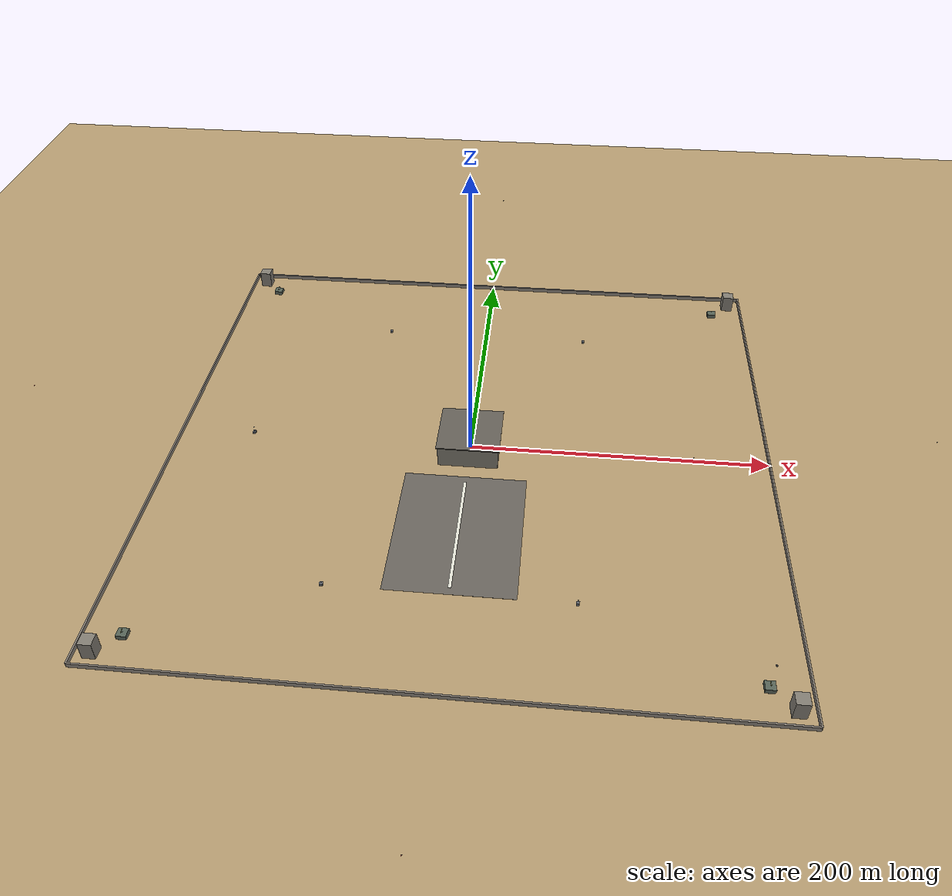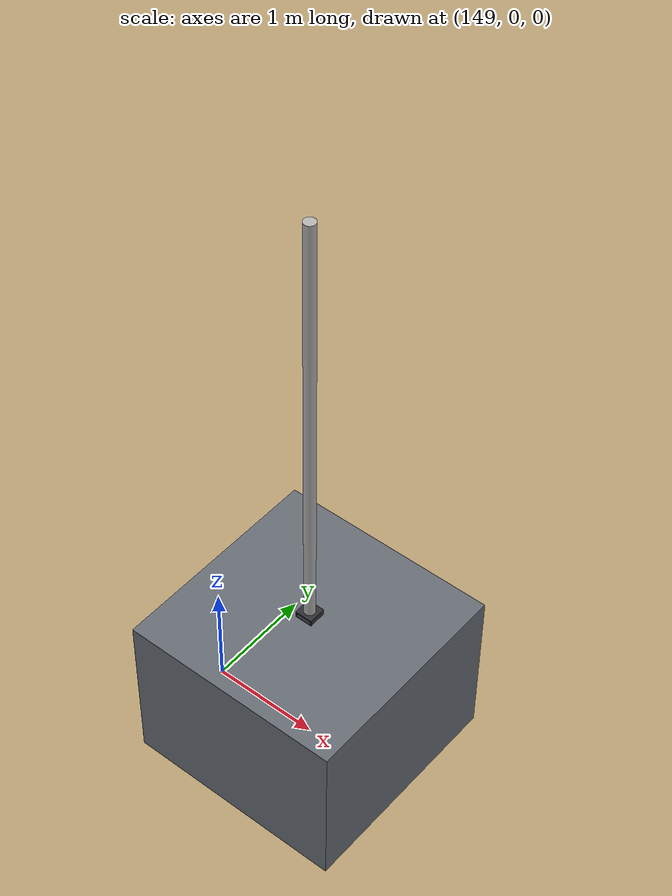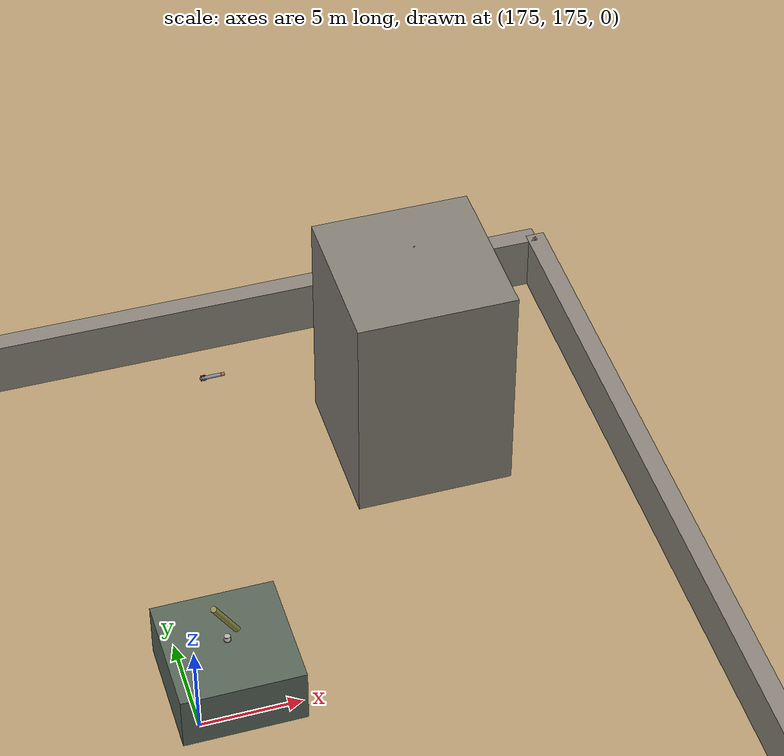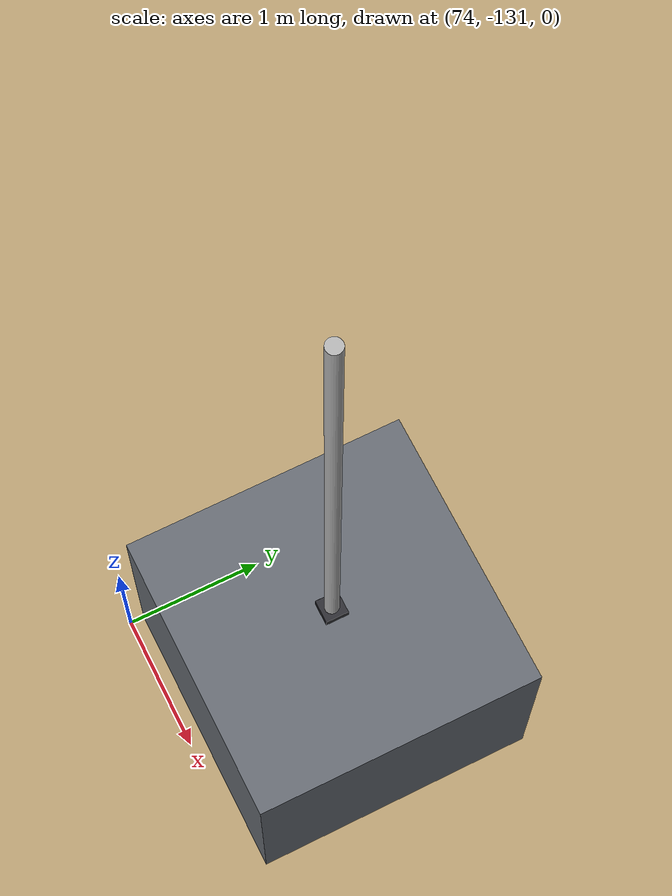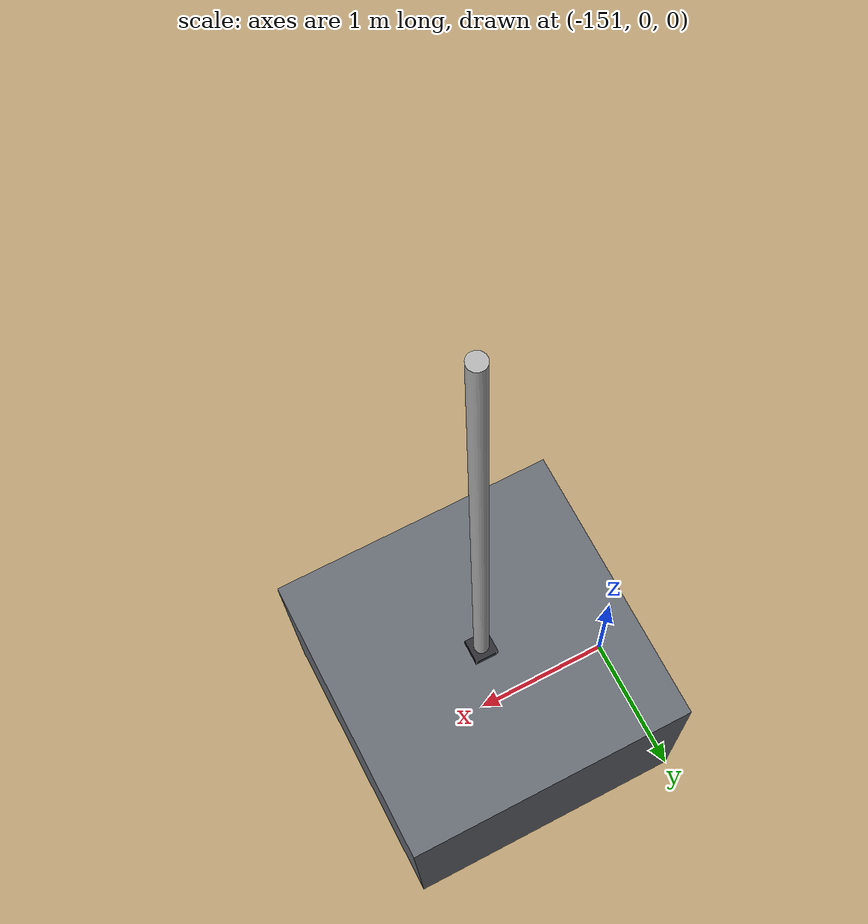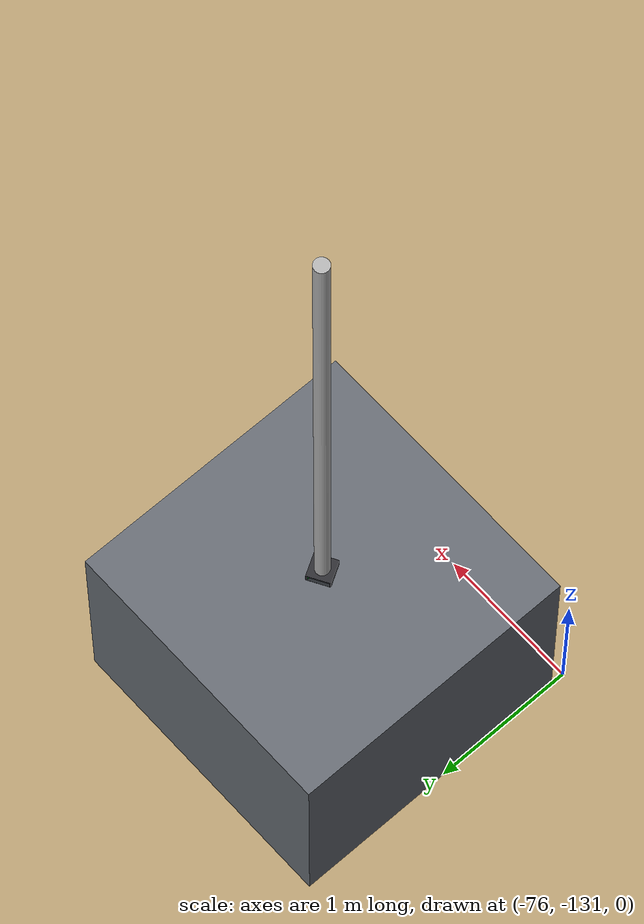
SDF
<?xml version="1.0" encoding="UTF-8"?>
<sdf version="1.9">
  <world name="military_base">

    <!-- ── Physics ─────────────────────────────────────────────────────── -->
    <physics type="ode">
      <max_step_size>0.004</max_step_size>
      <real_time_factor>1.0</real_time_factor>
      <real_time_update_rate>250</real_time_update_rate>
    </physics>
    <gravity>0 0 0</gravity>
    <magnetic_field>6e-06 2.3e-05 -4.2e-05</magnetic_field>
    <atmosphere type="adiabatic"/>

    <!-- ── Required plugins ───────────────────────────────────────────── -->
    <plugin filename="gz-sim-physics-system"
      name="gz::sim::systems::Physics"/>
    <plugin filename="gz-sim-user-commands-system"
      name="gz::sim::systems::UserCommands"/>
    <plugin filename="gz-sim-scene-broadcaster-system"
      name="gz::sim::systems::SceneBroadcaster"/>
    <plugin filename="gz-sim-contact-system"
      name="gz::sim::systems::Contact"/>
    <plugin filename="gz-sim-sensors-system"
      name="gz::sim::systems::Sensors">
      <render_engine>ogre2</render_engine>
    </plugin>

    <!-- ── Scene / Lighting ───────────────────────────────────────────── -->
    <scene>
      <ambient>0.6 0.55 0.45 1</ambient>
      <background>0.53 0.71 0.87 1</background>
      <shadows>true</shadows>
      <grid>false</grid>
    </scene>

    <light name="sun" type="directional">
      <pose>0 0 500 0 0.3 0.785</pose>
      <diffuse>1.0 0.95 0.85 1</diffuse>
      <specular>0.3 0.28 0.25 1</specular>
      <direction>-0.5 0.3 -0.8</direction>
      <cast_shadows>true</cast_shadows>
    </light>

    <!-- Ambient fill light -->
    <light name="ambient_fill" type="directional">
      <pose>0 0 100 0 -0.3 -0.785</pose>
      <diffuse>0.3 0.35 0.45 1</diffuse>
      <specular>0 0 0 1</specular>
      <direction>0.5 -0.3 -0.6</direction>
      <cast_shadows>false</cast_shadows>
    </light>

    <!-- ── Ground plane (desert/sand) ────────────────────────────────── -->
    <model name="ground_plane">
      <static>true</static>
      <link name="link">
        <collision name="collision">
          <geometry>
            <plane>
              <normal>0 0 1</normal>
              <size>2000 2000</size>
            </plane>
          </geometry>
          <surface>
            <friction><ode><mu>0.8</mu><mu2>0.8</mu2></ode></friction>
          </surface>
        </collision>
        <visual name="visual">
          <geometry>
            <plane>
              <normal>0 0 1</normal>
              <size>2000 2000</size>
            </plane>
          </geometry>
          <material>
            <ambient>0.72 0.62 0.45 1</ambient>
            <diffuse>0.72 0.62 0.45 1</diffuse>
            <specular>0.1 0.09 0.07 1</specular>
          </material>
        </visual>
      </link>
    </model>

    <!-- MILITARY BASE COMPOUND                                           -->

    <!-- ── Perimeter walls (400m × 400m, 3m high) ────────────────────── -->
    <!-- North wall -->
    <model name="wall_north">
      <static>true</static>
      <pose>0 200 1.5 0 0 0</pose>
      <link name="link">
        <collision name="col"><geometry><box><size>400 1 3</size></box></geometry></collision>
        <visual name="vis">
          <geometry><box><size>400 1 3</size></box></geometry>
          <material>
            <ambient>0.55 0.52 0.48 1</ambient>
            <diffuse>0.55 0.52 0.48 1</diffuse>
          </material>
        </visual>
      </link>
    </model>

    <!-- South wall -->
    <model name="wall_south">
      <static>true</static>
      <pose>0 -200 1.5 0 0 0</pose>
      <link name="link">
        <collision name="col"><geometry><box><size>400 1 3</size></box></geometry></collision>
        <visual name="vis">
          <geometry><box><size>400 1 3</size></box></geometry>
          <material><ambient>0.55 0.52 0.48 1</ambient><diffuse>0.55 0.52 0.48 1</diffuse></material>
        </visual>
      </link>
    </model>

    <!-- East wall -->
    <model name="wall_east">
      <static>true</static>
      <pose>200 0 1.5 0 0 0</pose>
      <link name="link">
        <collision name="col"><geometry><box><size>1 400 3</size></box></geometry></collision>
        <visual name="vis">
          <geometry><box><size>1 400 3</size></box></geometry>
          <material><ambient>0.55 0.52 0.48 1</ambient><diffuse>0.55 0.52 0.48 1</diffuse></material>
        </visual>
      </link>
    </model>

    <!-- West wall -->
    <model name="wall_west">
      <static>true</static>
      <pose>-200 0 1.5 0 0 0</pose>
      <link name="link">
        <collision name="col"><geometry><box><size>1 400 3</size></box></geometry></collision>
        <visual name="vis">
          <geometry><box><size>1 400 3</size></box></geometry>
          <material><ambient>0.55 0.52 0.48 1</ambient><diffuse>0.55 0.52 0.48 1</diffuse></material>
        </visual>
      </link>
    </model>

    <!-- ── Main central building (40m × 40m × 15m) ───────────────────── -->
    <model name="main_building">
      <static>true</static>
      <pose>0 0 7.5 0 0 0</pose>
      <link name="link">
        <collision name="col"><geometry><box><size>40 40 15</size></box></geometry></collision>
        <visual name="vis">
          <geometry><box><size>40 40 15</size></box></geometry>
          <material>
            <ambient>0.50 0.48 0.44 1</ambient>
            <diffuse>0.50 0.48 0.44 1</diffuse>
            <specular>0.05 0.05 0.05 1</specular>
          </material>
        </visual>
      </link>
    </model>

    <!-- Roof detail: flat slab -->
    <model name="main_building_roof">
      <static>true</static>
      <pose>0 0 15.3 0 0 0</pose>
      <link name="link">
        <visual name="vis">
          <geometry><box><size>42 42 0.6</size></box></geometry>
          <material><ambient>0.4 0.38 0.35 1</ambient><diffuse>0.4 0.38 0.35 1</diffuse></material>
        </visual>
      </link>
    </model>

    <!-- ── Corner guard towers (8m × 8m × 12m) ──────────────────────── -->
    <model name="tower_ne">
      <static>true</static>
      <pose>190 190 6 0 0 0</pose>
      <link name="link">
        <collision name="col"><geometry><box><size>8 8 12</size></box></geometry></collision>
        <visual name="vis">
          <geometry><box><size>8 8 12</size></box></geometry>
          <material><ambient>0.52 0.50 0.46 1</ambient><diffuse>0.52 0.50 0.46 1</diffuse></material>
        </visual>
      </link>
    </model>

    <model name="tower_nw">
      <static>true</static>
      <pose>-190 190 6 0 0 0</pose>
      <link name="link">
        <collision name="col"><geometry><box><size>8 8 12</size></box></geometry></collision>
        <visual name="vis">
          <geometry><box><size>8 8 12</size></box></geometry>
          <material><ambient>0.52 0.50 0.46 1</ambient><diffuse>0.52 0.50 0.46 1</diffuse></material>
        </visual>
      </link>
    </model>

    <model name="tower_se">
      <static>true</static>
      <pose>190 -190 6 0 0 0</pose>
      <link name="link">
        <collision name="col"><geometry><box><size>8 8 12</size></box></geometry></collision>
        <visual name="vis">
          <geometry><box><size>8 8 12</size></box></geometry>
          <material><ambient>0.52 0.50 0.46 1</ambient><diffuse>0.52 0.50 0.46 1</diffuse></material>
        </visual>
      </link>
    </model>

    <model name="tower_sw">
      <static>true</static>
      <pose>-190 -190 6 0 0 0</pose>
      <link name="link">
        <collision name="col"><geometry><box><size>8 8 12</size></box></geometry></collision>
        <visual name="vis">
          <geometry><box><size>8 8 12</size></box></geometry>
          <material><ambient>0.52 0.50 0.46 1</ambient><diffuse>0.52 0.50 0.46 1</diffuse></material>
        </visual>
      </link>
    </model>

    <!-- ── Radar tower at center (cylinder r=2m, h=20m) ──────────────── -->
    <model name="radar_tower_base">
      <static>true</static>
      <pose>0 0 10 0 0 0</pose>
      <link name="link">
        <collision name="col">
          <geometry><cylinder><radius>2</radius><length>20</length></cylinder></geometry>
        </collision>
        <visual name="vis">
          <geometry><cylinder><radius>2</radius><length>20</length></cylinder></geometry>
          <material><ambient>0.3 0.32 0.35 1</ambient><diffuse>0.3 0.32 0.35 1</diffuse></material>
        </visual>
      </link>
    </model>

    <!-- Radar dish -->
    <model name="radar_dish">
      <static>true</static>
      <pose>0 0 21 0 1.5707 0</pose>
      <link name="link">
        <visual name="vis">
          <geometry><cylinder><radius>3</radius><length>0.3</length></cylinder></geometry>
          <material><ambient>0.6 0.6 0.65 1</ambient><diffuse>0.6 0.6 0.65 1</diffuse></material>
        </visual>
      </link>
    </model>

    <!-- ── Runway / parade ground (marked strip) ─────────────────────── -->
    <model name="parade_ground">
      <static>true</static>
      <pose>0 -80 0.01 0 0 0</pose>
      <link name="link">
        <visual name="vis">
          <geometry><box><size>80 100 0.02</size></box></geometry>
          <material><ambient>0.42 0.40 0.37 1</ambient><diffuse>0.42 0.40 0.37 1</diffuse></material>
        </visual>
      </link>
    </model>

    <!-- Runway centre line markings -->
    <model name="runway_line_1">
      <static>true</static>
      <pose>0 -80 0.02 0 0 0</pose>
      <link name="link">
        <visual name="vis">
          <geometry><box><size>2 90 0.01</size></box></geometry>
          <material><ambient>0.9 0.9 0.85 1</ambient><diffuse>0.9 0.9 0.85 1</diffuse></material>
        </visual>
      </link>
    </model>

    <!-- SENSOR POSTS — hexagon at r=150m                               -->

    <!-- Sensor 0: angle=0° → (150, 0) -->
    <model name="sensor_post_0">
      <static>true</static>
      <pose>150 0 0.75 0 0 0</pose>
      <link name="link">
        <collision name="col"><geometry><box><size>2 2 1.5</size></box></geometry></collision>
        <visual name="vis">
          <geometry><box><size>2 2 1.5</size></box></geometry>
          <material><ambient>0.4 0.42 0.45 1</ambient><diffuse>0.4 0.42 0.45 1</diffuse></material>
        </visual>
      </link>
    </model>
    <model name="sensor_antenna_0">
      <static>true</static>
      <pose>150 0 3.5 0 0 0</pose>
      <link name="link">
        <visual name="vis">
          <geometry><cylinder><radius>0.05</radius><length>4</length></cylinder></geometry>
          <material><ambient>0.7 0.7 0.7 1</ambient><diffuse>0.7 0.7 0.7 1</diffuse></material>
        </visual>
      </link>
    </model>

    <!-- Sensor 1: angle=60° → (75, 129.9) -->
    <model name="sensor_post_1">
      <static>true</static>
      <pose>75 129.9 0.75 0 0 0</pose>
      <link name="link">
        <collision name="col"><geometry><box><size>2 2 1.5</size></box></geometry></collision>
        <visual name="vis">
          <geometry><box><size>2 2 1.5</size></box></geometry>
          <material><ambient>0.4 0.42 0.45 1</ambient><diffuse>0.4 0.42 0.45 1</diffuse></material>
        </visual>
      </link>
    </model>
    <model name="sensor_antenna_1">
      <static>true</static>
      <pose>75 129.9 3.5 0 0 0</pose>
      <link name="link">
        <visual name="vis">
          <geometry><cylinder><radius>0.05</radius><length>4</length></cylinder></geometry>
          <material><ambient>0.7 0.7 0.7 1</ambient><diffuse>0.7 0.7 0.7 1</diffuse></material>
        </visual>
      </link>
    </model>

    <!-- Sensor 2: angle=120° → (-75, 129.9) -->
    <model name="sensor_post_2">
      <static>true</static>
      <pose>-75 129.9 0.75 0 0 0</pose>
      <link name="link">
        <collision name="col"><geometry><box><size>2 2 1.5</size></box></geometry></collision>
        <visual name="vis">
          <geometry><box><size>2 2 1.5</size></box></geometry>
          <material><ambient>0.4 0.42 0.45 1</ambient><diffuse>0.4 0.42 0.45 1</diffuse></material>
        </visual>
      </link>
    </model>
    <model name="sensor_antenna_2">
      <static>true</static>
      <pose>-75 129.9 3.5 0 0 0</pose>
      <link name="link">
        <visual name="vis">
          <geometry><cylinder><radius>0.05</radius><length>4</length></cylinder></geometry>
          <material><ambient>0.7 0.7 0.7 1</ambient><diffuse>0.7 0.7 0.7 1</diffuse></material>
        </visual>
      </link>
    </model>

    <!-- Sensor 3: angle=180° → (-150, 0) -->
    <model name="sensor_post_3">
      <static>true</static>
      <pose>-150 0 0.75 0 0 0</pose>
      <link name="link">
        <collision name="col"><geometry><box><size>2 2 1.5</size></box></geometry></collision>
        <visual name="vis">
          <geometry><box><size>2 2 1.5</size></box></geometry>
          <material><ambient>0.4 0.42 0.45 1</ambient><diffuse>0.4 0.42 0.45 1</diffuse></material>
        </visual>
      </link>
    </model>
    <model name="sensor_antenna_3">
      <static>true</static>
      <pose>-150 0 3.5 0 0 0</pose>
      <link name="link">
        <visual name="vis">
          <geometry><cylinder><radius>0.05</radius><length>4</length></cylinder></geometry>
          <material><ambient>0.7 0.7 0.7 1</ambient><diffuse>0.7 0.7 0.7 1</diffuse></material>
        </visual>
      </link>
    </model>

    <!-- Sensor 4: angle=240° → (-75, -129.9) -->
    <model name="sensor_post_4">
      <static>true</static>
      <pose>-75 -129.9 0.75 0 0 0</pose>
      <link name="link">
        <collision name="col"><geometry><box><size>2 2 1.5</size></box></geometry></collision>
        <visual name="vis">
          <geometry><box><size>2 2 1.5</size></box></geometry>
          <material><ambient>0.4 0.42 0.45 1</ambient><diffuse>0.4 0.42 0.45 1</diffuse></material>
        </visual>
      </link>
    </model>
    <model name="sensor_antenna_4">
      <static>true</static>
      <pose>-75 -129.9 3.5 0 0 0</pose>
      <link name="link">
        <visual name="vis">
          <geometry><cylinder><radius>0.05</radius><length>4</length></cylinder></geometry>
          <material><ambient>0.7 0.7 0.7 1</ambient><diffuse>0.7 0.7 0.7 1</diffuse></material>
        </visual>
      </link>
    </model>

    <!-- Sensor 5: angle=300° → (75, -129.9) -->
    <model name="sensor_post_5">
      <static>true</static>
      <pose>75 -129.9 0.75 0 0 0</pose>
      <link name="link">
        <collision name="col"><geometry><box><size>2 2 1.5</size></box></geometry></collision>
        <visual name="vis">
          <geometry><box><size>2 2 1.5</size></box></geometry>
          <material><ambient>0.4 0.42 0.45 1</ambient><diffuse>0.4 0.42 0.45 1</diffuse></material>
        </visual>
      </link>
    </model>
    <model name="sensor_antenna_5">
      <static>true</static>
      <pose>75 -129.9 3.5 0 0 0</pose>
      <link name="link">
        <visual name="vis">
          <geometry><cylinder><radius>0.05</radius><length>4</length></cylinder></geometry>
          <material><ambient>0.7 0.7 0.7 1</ambient><diffuse>0.7 0.7 0.7 1</diffuse></material>
        </visual>
      </link>
    </model>

    <!-- DEFENSE POSTS — corners at r=250m                              -->

    <!-- Defense post NE: (177, 177) -->
    <model name="defense_post_ne">
      <static>true</static>
      <pose>177 177 1.5 0 0 0</pose>
      <link name="link">
        <collision name="col"><geometry><box><size>6 6 3</size></box></geometry></collision>
        <visual name="vis">
          <geometry><box><size>6 6 3</size></box></geometry>
          <material><ambient>0.35 0.40 0.35 1</ambient><diffuse>0.35 0.40 0.35 1</diffuse></material>
        </visual>
      </link>
    </model>
    <!-- Launch rail marker NE -->
    <model name="launch_rail_ne">
      <static>true</static>
      <pose>177 177 4.5 0 -0.52 0.785</pose>
      <link name="link">
        <visual name="vis">
          <geometry><cylinder><radius>0.15</radius><length>4</length></cylinder></geometry>
          <material><ambient>0.6 0.6 0.3 1</ambient><diffuse>0.6 0.6 0.3 1</diffuse></material>
        </visual>
      </link>
    </model>

    <!-- Defense post NW: (-177, 177) -->
    <model name="defense_post_nw">
      <static>true</static>
      <pose>-177 177 1.5 0 0 0</pose>
      <link name="link">
        <collision name="col"><geometry><box><size>6 6 3</size></box></geometry></collision>
        <visual name="vis">
          <geometry><box><size>6 6 3</size></box></geometry>
          <material><ambient>0.35 0.40 0.35 1</ambient><diffuse>0.35 0.40 0.35 1</diffuse></material>
        </visual>
      </link>
    </model>
    <model name="launch_rail_nw">
      <static>true</static>
      <pose>-177 177 4.5 0 -0.52 2.356</pose>
      <link name="link">
        <visual name="vis">
          <geometry><cylinder><radius>0.15</radius><length>4</length></cylinder></geometry>
          <material><ambient>0.6 0.6 0.3 1</ambient><diffuse>0.6 0.6 0.3 1</diffuse></material>
        </visual>
      </link>
    </model>

    <!-- Defense post SE: (177, -177) -->
    <model name="defense_post_se">
      <static>true</static>
      <pose>177 -177 1.5 0 0 0</pose>
      <link name="link">
        <collision name="col"><geometry><box><size>6 6 3</size></box></geometry></collision>
        <visual name="vis">
          <geometry><box><size>6 6 3</size></box></geometry>
          <material><ambient>0.35 0.40 0.35 1</ambient><diffuse>0.35 0.40 0.35 1</diffuse></material>
        </visual>
      </link>
    </model>
    <model name="launch_rail_se">
      <static>true</static>
      <pose>177 -177 4.5 0 -0.52 -0.785</pose>
      <link name="link">
        <visual name="vis">
          <geometry><cylinder><radius>0.15</radius><length>4</length></cylinder></geometry>
          <material><ambient>0.6 0.6 0.3 1</ambient><diffuse>0.6 0.6 0.3 1</diffuse></material>
        </visual>
      </link>
    </model>

    <!-- Defense post SW: (-177, -177) -->
    <model name="defense_post_sw">
      <static>true</static>
      <pose>-177 -177 1.5 0 0 0</pose>
      <link name="link">
        <collision name="col"><geometry><box><size>6 6 3</size></box></geometry></collision>
        <visual name="vis">
          <geometry><box><size>6 6 3</size></box></geometry>
          <material><ambient>0.35 0.40 0.35 1</ambient><diffuse>0.35 0.40 0.35 1</diffuse></material>
        </visual>
      </link>
    </model>
    <model name="launch_rail_sw">
      <static>true</static>
      <pose>-177 -177 4.5 0 -0.52 -2.356</pose>
      <link name="link">
        <visual name="vis">
          <geometry><cylinder><radius>0.15</radius><length>4</length></cylinder></geometry>
          <material><ambient>0.6 0.6 0.3 1</ambient><diffuse>0.6 0.6 0.3 1</diffuse></material>
        </visual>
      </link>
    </model>

    <!-- DRONE SPAWN POSITIONS (populated by gazebo.launch.py at runtime)-->
    <!-- Interceptor drones at defense posts, enemy drones at perimeter  -->

    <include>
      <uri>model://coyote_b2</uri>
      <name>coyote_1</name>
      <pose>177 177 20 0 0 0</pose>
    </include>

    <!-- Interceptor 2 at defense post NW -->
    <include>
      <uri>model://interceptor_drone</uri>
      <name>interceptor_2</name>
      <pose>-177 177 20 0 0 0</pose>
    </include>

    <include>
      <uri>model://dronehunter_f700</uri>
      <name>dronehunter_3</name>
      <pose>177 -177 20 0 0 0</pose>
    </include>

    <!-- Interceptor 4 at defense post SW -->
    <include>
      <uri>model://interceptor_drone</uri>
      <name>interceptor_4</name>
      <pose>-177 -177 20 0 0 0</pose>
    </include>

    <!-- Enemy drones at perimeter (r=300m, evenly spaced 90° apart) -->
    <include>
      <uri>model://enemy_drone</uri>
      <name>enemy_1</name>
      <pose>300 0 30 0 0 3.14159</pose>
    </include>

    <include>
      <uri>model://enemy_drone</uri>
      <name>enemy_2</name>
      <pose>0 300 30 0 0 3.14159</pose>
    </include>

    <include>
      <uri>model://enemy_drone</uri>
      <name>enemy_3</name>
      <pose>-300 0 30 0 0 0</pose>
    </include>

    <include>
      <uri>model://enemy_drone</uri>
      <name>enemy_4</name>
      <pose>0 -300 30 0 0 0</pose>
    </include>

    <!-- ECHODYNE ECHOGUARD RADAR — 6 instances on sensor posts          -->
    <!-- Hexagon r=150 m,  one per post,  each faces inward (toward 0,0) -->

    <!-- Post 0: angle=0°  → (150, 0).  Yaw=π so +Y faces origin. -->
    <include>
      <uri>model://echoguard</uri>
      <name>echoguard_1</name>
      <pose>150 0 1.555 0 0 3.1416</pose>
      <plugin filename="echoguard_radar_plugin"
              name="acsdg_sensors_hw::EchoGuardRadarPlugin">
        <sensor_id>1</sensor_id>
        <update_rate>25.0</update_rate>
      </plugin>
    </include>

    <!-- Post 1: angle=60° → (75, 129.9).  Yaw = π + π/3 = 4π/3 -->
    <include>
      <uri>model://echoguard</uri>
      <name>echoguard_2</name>
      <pose>75 129.9 1.555 0 0 -2.6180</pose>
      <plugin filename="echoguard_radar_plugin"
              name="acsdg_sensors_hw::EchoGuardRadarPlugin">
        <sensor_id>2</sensor_id>
        <update_rate>25.0</update_rate>
      </plugin>
    </include>

    <!-- Post 2: angle=120° → (-75, 129.9).  Yaw = π + 2π/3 = 5π/3 -->
    <include>
      <uri>model://echoguard</uri>
      <name>echoguard_3</name>
      <pose>-75 129.9 1.555 0 0 -1.5708</pose>
      <plugin filename="echoguard_radar_plugin"
              name="acsdg_sensors_hw::EchoGuardRadarPlugin">
        <sensor_id>3</sensor_id>
        <update_rate>25.0</update_rate>
      </plugin>
    </include>

    <!-- Post 3: angle=180° → (-150, 0).  Yaw = 0 (faces East = origin) -->
    <include>
      <uri>model://echoguard</uri>
      <name>echoguard_4</name>
      <pose>-150 0 1.555 0 0 0</pose>
      <plugin filename="echoguard_radar_plugin"
              name="acsdg_sensors_hw::EchoGuardRadarPlugin">
        <sensor_id>4</sensor_id>
        <update_rate>25.0</update_rate>
      </plugin>
    </include>

    <!-- Post 4: angle=240° → (-75, -129.9).  Yaw = π/3 -->
    <include>
      <uri>model://echoguard</uri>
      <name>echoguard_5</name>
      <pose>-75 -129.9 1.555 0 0 0.5236</pose>
      <plugin filename="echoguard_radar_plugin"
              name="acsdg_sensors_hw::EchoGuardRadarPlugin">
        <sensor_id>5</sensor_id>
        <update_rate>25.0</update_rate>
      </plugin>
    </include>

    <!-- Post 5: angle=300° → (75, -129.9).  Yaw = 2π/3 -->
    <include>
      <uri>model://echoguard</uri>
      <name>echoguard_6</name>
      <pose>75 -129.9 1.555 0 0 1.5708</pose>
      <plugin filename="echoguard_radar_plugin"
              name="acsdg_sensors_hw::EchoGuardRadarPlugin">
        <sensor_id>6</sensor_id>
        <update_rate>25.0</update_rate>
      </plugin>
    </include>

    <!-- DEDRONE RF-360 — 4 instances on defense posts (corners r≈250 m) -->

    <include>
      <uri>model://rf360</uri>
      <name>rf360_1</name>
      <pose>177 177 3.255 0 0 0</pose>
      <plugin filename="rf360_plugin" name="acsdg_sensors_hw::RF360Plugin">
        <sensor_id>1</sensor_id>
        <update_rate>1.0</update_rate>
      </plugin>
    </include>

    <include>
      <uri>model://rf360</uri>
      <name>rf360_2</name>
      <pose>-177 177 3.255 0 0 0</pose>
      <plugin filename="rf360_plugin" name="acsdg_sensors_hw::RF360Plugin">
        <sensor_id>2</sensor_id>
        <update_rate>1.0</update_rate>
      </plugin>
    </include>

    <include>
      <uri>model://rf360</uri>
      <name>rf360_3</name>
      <pose>177 -177 3.255 0 0 0</pose>
      <plugin filename="rf360_plugin" name="acsdg_sensors_hw::RF360Plugin">
        <sensor_id>3</sensor_id>
        <update_rate>1.0</update_rate>
      </plugin>
    </include>

    <include>
      <uri>model://rf360</uri>
      <name>rf360_4</name>
      <pose>-177 -177 3.255 0 0 0</pose>
      <plugin filename="rf360_plugin" name="acsdg_sensors_hw::RF360Plugin">
        <sensor_id>4</sensor_id>
        <update_rate>1.0</update_rate>
      </plugin>
    </include>

    <!-- FLIR BOSON+ 640 — 4 instances on guard towers (compound corners) -->
    <!-- Towers are at ±190 m, height 12 m → sensor at z≈13 m           -->
    <!-- Each Boson faces inward (45° toward base centre)                -->

    <include>
      <uri>model://boson_camera</uri>
      <name>boson_1</name>
      <!-- Tower NE (190, 190), face SW: yaw = -3π/4 -->
      <pose>190 190 13 0 -0.26 -2.3562</pose>
    </include>

    <include>
      <uri>model://boson_camera</uri>
      <name>boson_2</name>
      <!-- Tower NW (-190, 190), face SE: yaw = -π/4 -->
      <pose>-190 190 13 0 -0.26 -0.7854</pose>
    </include>

    <include>
      <uri>model://boson_camera</uri>
      <name>boson_3</name>
      <!-- Tower SE (190, -190), face NW: yaw = 3π/4 -->
      <pose>190 -190 13 0 -0.26 2.3562</pose>
    </include>

    <include>
      <uri>model://boson_camera</uri>
      <name>boson_4</name>
      <!-- Tower SW (-190, -190), face NE: yaw = π/4 -->
      <pose>-190 -190 13 0 -0.26 0.7854</pose>
    </include>

  </world>
</sdf>

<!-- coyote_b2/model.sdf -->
<sdf version="1.9">
  <model name="coyote_b2">
    <pose>0 0 0 0 0 0</pose>

    <link name="base_link">
      <gravity>false</gravity>
      <velocity_decay>
        <linear>0</linear>
        <angular>10</angular>
      </velocity_decay>
      <inertial>
        <mass>7.0</mass>
        <inertia>
          <ixx>0.020</ixx><ixy>0</ixy><ixz>0</ixz>
          <iyy>0.59</iyy><iyz>0</iyz>
          <izz>0.59</izz>
        </inertia>
      </inertial>

      <collision name="body_collision">
        <geometry><box><size>1.0 0.15 0.15</size></box></geometry>
      </collision>

      <!-- Main fuselage (steel grey) -->
      <visual name="fuselage">
        <geometry>
          <cylinder><radius>0.075</radius><length>0.85</length></cylinder>
        </geometry>
        <pose>0 0 0 0 1.5708 0</pose>   <!-- rotate cylinder onto x-axis -->
        <material>
          <ambient>0.45 0.45 0.5 1</ambient>
          <diffuse>0.55 0.55 0.6 1</diffuse>
          <specular>0.7 0.7 0.7 1</specular>
        </material>
      </visual>

      <!-- Nose cone -->
      <visual name="nose_cone">
        <pose>0.475 0 0 0 1.5708 0</pose>
        <geometry>
          <cylinder><radius>0.075</radius><length>0.15</length></cylinder>
        </geometry>
        <material>
          <ambient>0.6 0.4 0.2 1</ambient>
          <diffuse>0.7 0.45 0.25 1</diffuse>
        </material>
      </visual>

      <!-- Cruciform fins (fold-out cruciform — cosmetic, no aero in sim) -->
      <visual name="fin_top">
        <pose>-0.35 0 0.10 0 0 0</pose>
        <geometry><box><size>0.20 0.02 0.10</size></box></geometry>
        <material><ambient>0.25 0.25 0.3 1</ambient><diffuse>0.3 0.3 0.35 1</diffuse></material>
      </visual>
      <visual name="fin_bottom">
        <pose>-0.35 0 -0.10 0 0 0</pose>
        <geometry><box><size>0.20 0.02 0.10</size></box></geometry>
        <material><ambient>0.25 0.25 0.3 1</ambient><diffuse>0.3 0.3 0.35 1</diffuse></material>
      </visual>
      <visual name="fin_left">
        <pose>-0.35 0.10 0 0 0 0</pose>
        <geometry><box><size>0.20 0.10 0.02</size></box></geometry>
        <material><ambient>0.25 0.25 0.3 1</ambient><diffuse>0.3 0.3 0.35 1</diffuse></material>
      </visual>
      <visual name="fin_right">
        <pose>-0.35 -0.10 0 0 0 0</pose>
        <geometry><box><size>0.20 0.10 0.02</size></box></geometry>
        <material><ambient>0.25 0.25 0.3 1</ambient><diffuse>0.3 0.3 0.35 1</diffuse></material>
      </visual>

      <!-- Orange exhaust cap (hot end, points at -x) -->
      <visual name="exhaust">
        <pose>-0.45 0 0 0 1.5708 0</pose>
        <geometry>
          <cylinder><radius>0.06</radius><length>0.08</length></cylinder>
        </geometry>
        <material>
          <ambient>1.0 0.4 0.1 1</ambient><diffuse>1.0 0.5 0.15 1</diffuse>
          <emissive>0.8 0.3 0 1</emissive>
        </material>
      </visual>
    </link>

    <!-- Velocity control (cmd_vel applied in body frame; gz_bridge_shim
         inverse-rotates the world-frame ROS Twist before forwarding). -->
    <plugin filename="gz-sim-velocity-control-system"
      name="gz::sim::systems::VelocityControl">
    </plugin>

    <!-- Odometry publisher (3D — required so cmd_vel rotation can read pose.z). -->
    <plugin filename="gz-sim-odometry-publisher-system"
      name="gz::sim::systems::OdometryPublisher">
      <odom_frame>world</odom_frame>
      <robot_base_frame>coyote_b2</robot_base_frame>
      <odom_publish_frequency>50</odom_publish_frequency>
      <dimensions>3</dimensions>
    </plugin>

  </model>
</sdf>

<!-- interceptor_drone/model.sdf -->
<sdf version="1.9">
  <model name="interceptor_drone">
    <pose>0 0 0 0 0 0</pose>

    <!-- ── Main body ─────────────────────────────────────────────────── -->
    <link name="base_link">
      <!-- Kinematic velocity-controlled body (see plugin below); gravity
           would fight the velocity plugin between command ticks and drag
           the drone to z=0 whenever cmd_vel stops arriving. -->
      <gravity>false</gravity>
      <velocity_decay>
        <linear>0</linear>
        <angular>10</angular>
      </velocity_decay>
      <inertial>
        <mass>2.5</mass>
        <inertia>
          <ixx>0.032</ixx><ixy>0</ixy><ixz>0</ixz>
          <iyy>0.032</iyy><iyz>0</iyz>
          <izz>0.055</izz>
        </inertia>
      </inertial>

      <collision name="body_collision">
        <geometry><box><size>0.7 0.7 0.3</size></box></geometry>
      </collision>

      <!-- Central body (green) -->
      <visual name="body_visual">
        <geometry><box><size>0.32 0.32 0.12</size></box></geometry>
        <material>
          <ambient>0.1 0.75 0.2 1</ambient>
          <diffuse>0.1 0.75 0.2 1</diffuse>
          <specular>0.1 0.3 0.1 1</specular>
        </material>
      </visual>

      <!-- Arms -->
      <visual name="arm_ne">
        <pose>0.14 0.14 0 0 0 0.785</pose>
        <geometry><box><size>0.40 0.04 0.03</size></box></geometry>
        <material><ambient>0.12 0.12 0.12 1</ambient><diffuse>0.12 0.12 0.12 1</diffuse></material>
      </visual>
      <visual name="arm_nw">
        <pose>-0.14 0.14 0 0 0 -0.785</pose>
        <geometry><box><size>0.40 0.04 0.03</size></box></geometry>
        <material><ambient>0.12 0.12 0.12 1</ambient><diffuse>0.12 0.12 0.12 1</diffuse></material>
      </visual>
      <visual name="arm_se">
        <pose>0.14 -0.14 0 0 0 -0.785</pose>
        <geometry><box><size>0.40 0.04 0.03</size></box></geometry>
        <material><ambient>0.12 0.12 0.12 1</ambient><diffuse>0.12 0.12 0.12 1</diffuse></material>
      </visual>
      <visual name="arm_sw">
        <pose>-0.14 -0.14 0 0 0 0.785</pose>
        <geometry><box><size>0.40 0.04 0.03</size></box></geometry>
        <material><ambient>0.12 0.12 0.12 1</ambient><diffuse>0.12 0.12 0.12 1</diffuse></material>
      </visual>

      <!-- Rotors (larger, green-tinted) -->
      <visual name="rotor_0_vis">
        <pose>0.28 0.28 0.03 0 0 0</pose>
        <geometry><cylinder><radius>0.14</radius><length>0.01</length></cylinder></geometry>
        <material><ambient>0.05 0.3 0.05 0.7</ambient><diffuse>0.05 0.3 0.05 0.7</diffuse></material>
      </visual>
      <visual name="rotor_1_vis">
        <pose>-0.28 0.28 0.03 0 0 0</pose>
        <geometry><cylinder><radius>0.14</radius><length>0.01</length></cylinder></geometry>
        <material><ambient>0.05 0.3 0.05 0.7</ambient><diffuse>0.05 0.3 0.05 0.7</diffuse></material>
      </visual>
      <visual name="rotor_2_vis">
        <pose>0.28 -0.28 0.03 0 0 0</pose>
        <geometry><cylinder><radius>0.14</radius><length>0.01</length></cylinder></geometry>
        <material><ambient>0.05 0.3 0.05 0.7</ambient><diffuse>0.05 0.3 0.05 0.7</diffuse></material>
      </visual>
      <visual name="rotor_3_vis">
        <pose>-0.28 -0.28 0.03 0 0 0</pose>
        <geometry><cylinder><radius>0.14</radius><length>0.01</length></cylinder></geometry>
        <material><ambient>0.05 0.3 0.05 0.7</ambient><diffuse>0.05 0.3 0.05 0.7</diffuse></material>
      </visual>

      <!-- Green beacon on top -->
      <visual name="top_light">
        <pose>0 0 0.1 0 0 0</pose>
        <geometry><sphere><radius>0.04</radius></sphere></geometry>
        <material>
          <ambient>0 1 0 1</ambient><diffuse>0 1 0 1</diffuse>
          <emissive>0 0.6 0 1</emissive>
        </material>
      </visual>
    </link>

    <!-- ── Rotor links + joints ───────────────────────────────────────── -->
    <link name="rotor_0">
      <pose>0.28 0.28 0.03 0 0 0</pose>
      <gravity>false</gravity>
      <inertial><mass>0.04</mass><inertia><ixx>9.75e-06</ixx><ixy>0</ixy><ixz>0</ixz><iyy>0.000166704</iyy><iyz>0</iyz><izz>0.000167604</izz></inertia></inertial>
    </link>
    <joint name="rotor_0_joint" type="revolute">
      <parent>base_link</parent><child>rotor_0</child>
      <axis><xyz>0 0 1</xyz><limit><lower>-1e+16</lower><upper>1e+16</upper></limit></axis>
    </joint>

    <link name="rotor_1">
      <pose>-0.28 0.28 0.03 0 0 0</pose>
      <gravity>false</gravity>
      <inertial><mass>0.04</mass><inertia><ixx>9.75e-06</ixx><ixy>0</ixy><ixz>0</ixz><iyy>0.000166704</iyy><iyz>0</iyz><izz>0.000167604</izz></inertia></inertial>
    </link>
    <joint name="rotor_1_joint" type="revolute">
      <parent>base_link</parent><child>rotor_1</child>
      <axis><xyz>0 0 1</xyz><limit><lower>-1e+16</lower><upper>1e+16</upper></limit></axis>
    </joint>

    <link name="rotor_2">
      <pose>0.28 -0.28 0.03 0 0 0</pose>
      <gravity>false</gravity>
      <inertial><mass>0.04</mass><inertia><ixx>9.75e-06</ixx><ixy>0</ixy><ixz>0</ixz><iyy>0.000166704</iyy><iyz>0</iyz><izz>0.000167604</izz></inertia></inertial>
    </link>
    <joint name="rotor_2_joint" type="revolute">
      <parent>base_link</parent><child>rotor_2</child>
      <axis><xyz>0 0 1</xyz><limit><lower>-1e+16</lower><upper>1e+16</upper></limit></axis>
    </joint>

    <link name="rotor_3">
      <pose>-0.28 -0.28 0.03 0 0 0</pose>
      <gravity>false</gravity>
      <inertial><mass>0.04</mass><inertia><ixx>9.75e-06</ixx><ixy>0</ixy><ixz>0</ixz><iyy>0.000166704</iyy><iyz>0</iyz><izz>0.000167604</izz></inertia></inertial>
    </link>
    <joint name="rotor_3_joint" type="revolute">
      <parent>base_link</parent><child>rotor_3</child>
      <axis><xyz>0 0 1</xyz><limit><lower>-1e+16</lower><upper>1e+16</upper></limit></axis>
    </joint>

    <plugin filename="gz-sim-velocity-control-system"
      name="gz::sim::systems::VelocityControl">
    </plugin>

    <!-- Odometry publisher (3D — default is 2D, which zeroes pose.z) -->
    <plugin filename="gz-sim-odometry-publisher-system"
      name="gz::sim::systems::OdometryPublisher">
      <odom_frame>world</odom_frame>
      <robot_base_frame>interceptor_drone</robot_base_frame>
      <odom_publish_frequency>50</odom_publish_frequency>
      <dimensions>3</dimensions>
    </plugin>

  </model>
</sdf>

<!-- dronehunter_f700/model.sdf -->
<sdf version="1.9">
  <model name="dronehunter_f700">
    <pose>0 0 0 0 0 0</pose>

    <!-- Velocity-controlled body, gz-sim-velocity-control-system applies cmd_vel -->
    <plugin filename="gz-sim-velocity-control-system" name="gz::sim::systems::VelocityControl"/>

    <!-- 3D odometry publisher with explicit dimensions=3 -->
    <plugin filename="gz-sim-odometry-publisher-system"
            name="gz::sim::systems::OdometryPublisher">
      <odom_publish_frequency>50</odom_publish_frequency>
      <dimensions>3</dimensions>
    </plugin>

    <link name="body">
      <inertial>
        <mass>18.0</mass>
        <!-- Disc shape: r=0.5, h=0.15, m=18:
             ixx = iyy = (1/4)·m·r² + (1/12)·m·h² = 1.16
             izz = (1/2)·m·r² = 2.25 -->
        <inertia>
          <ixx>1.16</ixx><iyy>1.16</iyy><izz>2.25</izz>
          <ixy>0.0</ixy><ixz>0.0</ixz><iyz>0.0</iyz>
        </inertia>
      </inertial>
      <collision name="body_col">
        <geometry><cylinder><radius>0.5</radius><length>0.15</length></cylinder></geometry>
      </collision>
      <visual name="body_vis">
        <geometry><cylinder><radius>0.5</radius><length>0.15</length></cylinder></geometry>
        <material><ambient>0.2 0.2 0.2 1</ambient><diffuse>0.3 0.3 0.3 1</diffuse></material>
      </visual>
      <!-- 8 rotor stubs at 45° intervals, cosmetic (no joints, no animation) -->
      <visual name="rotor_e">
        <pose>0.45 0 0.1 0 0 0</pose>
        <geometry><cylinder><radius>0.15</radius><length>0.02</length></cylinder></geometry>
        <material><diffuse>0.4 0.4 0.4 1</diffuse></material>
      </visual>
      <visual name="rotor_ne">
        <pose>0.318 0.318 0.1 0 0 0</pose>
        <geometry><cylinder><radius>0.15</radius><length>0.02</length></cylinder></geometry>
        <material><diffuse>0.4 0.4 0.4 1</diffuse></material>
      </visual>
      <visual name="rotor_n">
        <pose>0 0.45 0.1 0 0 0</pose>
        <geometry><cylinder><radius>0.15</radius><length>0.02</length></cylinder></geometry>
        <material><diffuse>0.4 0.4 0.4 1</diffuse></material>
      </visual>
      <visual name="rotor_nw">
        <pose>-0.318 0.318 0.1 0 0 0</pose>
        <geometry><cylinder><radius>0.15</radius><length>0.02</length></cylinder></geometry>
        <material><diffuse>0.4 0.4 0.4 1</diffuse></material>
      </visual>
      <visual name="rotor_w">
        <pose>-0.45 0 0.1 0 0 0</pose>
        <geometry><cylinder><radius>0.15</radius><length>0.02</length></cylinder></geometry>
        <material><diffuse>0.4 0.4 0.4 1</diffuse></material>
      </visual>
      <visual name="rotor_sw">
        <pose>-0.318 -0.318 0.1 0 0 0</pose>
        <geometry><cylinder><radius>0.15</radius><length>0.02</length></cylinder></geometry>
        <material><diffuse>0.4 0.4 0.4 1</diffuse></material>
      </visual>
      <visual name="rotor_s">
        <pose>0 -0.45 0.1 0 0 0</pose>
        <geometry><cylinder><radius>0.15</radius><length>0.02</length></cylinder></geometry>
        <material><diffuse>0.4 0.4 0.4 1</diffuse></material>
      </visual>
      <visual name="rotor_se">
        <pose>0.318 -0.318 0.1 0 0 0</pose>
        <geometry><cylinder><radius>0.15</radius><length>0.02</length></cylinder></geometry>
        <material><diffuse>0.4 0.4 0.4 1</diffuse></material>
      </visual>
    </link>
  </model>
</sdf>

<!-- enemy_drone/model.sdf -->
<sdf version="1.9">
  <model name="enemy_drone">
    <pose>0 0 0 0 0 0</pose>

    <!-- ── Main body ─────────────────────────────────────────────────── -->
    <link name="base_link">
      <!-- Kinematic velocity-controlled body (see plugin below); gravity
           would fight the velocity plugin between command ticks and drag
           the drone to z=0 whenever cmd_vel stops arriving. -->
      <gravity>false</gravity>
      <!-- See interceptor_drone/model.sdf for the rationale behind the
           angular damping. Enemies are slower so they tumbled less, but
           same plugin behaviour, same fix. -->
      <velocity_decay>
        <linear>0</linear>
        <angular>10</angular>
      </velocity_decay>
      <inertial>
        <mass>1.5</mass>
        <inertia>
          <ixx>0.0195</ixx><ixy>0</ixy><ixz>0</ixz>
          <iyy>0.0195</iyy><iyz>0</iyz>
          <izz>0.0325</izz>
        </inertia>
      </inertial>

      <collision name="body_collision">
        <geometry><box><size>0.5 0.5 0.2</size></box></geometry>
      </collision>

      <!-- Central body (red) -->
      <visual name="body_visual">
        <geometry><box><size>0.25 0.25 0.1</size></box></geometry>
        <material>
          <ambient>0.85 0.1 0.1 1</ambient>
          <diffuse>0.85 0.1 0.1 1</diffuse>
          <specular>0.2 0.05 0.05 1</specular>
        </material>
      </visual>

      <!-- Arm NE -->
      <visual name="arm_ne">
        <pose>0.1 0.1 0 0 0 0.785</pose>
        <geometry><box><size>0.28 0.03 0.02</size></box></geometry>
        <material><ambient>0.15 0.15 0.15 1</ambient><diffuse>0.15 0.15 0.15 1</diffuse></material>
      </visual>
      <!-- Arm NW -->
      <visual name="arm_nw">
        <pose>-0.1 0.1 0 0 0 -0.785</pose>
        <geometry><box><size>0.28 0.03 0.02</size></box></geometry>
        <material><ambient>0.15 0.15 0.15 1</ambient><diffuse>0.15 0.15 0.15 1</diffuse></material>
      </visual>
      <!-- Arm SE -->
      <visual name="arm_se">
        <pose>0.1 -0.1 0 0 0 -0.785</pose>
        <geometry><box><size>0.28 0.03 0.02</size></box></geometry>
        <material><ambient>0.15 0.15 0.15 1</ambient><diffuse>0.15 0.15 0.15 1</diffuse></material>
      </visual>
      <!-- Arm SW -->
      <visual name="arm_sw">
        <pose>-0.1 -0.1 0 0 0 0.785</pose>
        <geometry><box><size>0.28 0.03 0.02</size></box></geometry>
        <material><ambient>0.15 0.15 0.15 1</ambient><diffuse>0.15 0.15 0.15 1</diffuse></material>
      </visual>

      <!-- Rotors (visual discs only — no physics) -->
      <visual name="rotor_0_vis">
        <pose>0.2 0.2 0.02 0 0 0</pose>
        <geometry><cylinder><radius>0.1</radius><length>0.01</length></cylinder></geometry>
        <material><ambient>0.1 0.1 0.1 0.7</ambient><diffuse>0.1 0.1 0.1 0.7</diffuse></material>
      </visual>
      <visual name="rotor_1_vis">
        <pose>-0.2 0.2 0.02 0 0 0</pose>
        <geometry><cylinder><radius>0.1</radius><length>0.01</length></cylinder></geometry>
        <material><ambient>0.1 0.1 0.1 0.7</ambient><diffuse>0.1 0.1 0.1 0.7</diffuse></material>
      </visual>
      <visual name="rotor_2_vis">
        <pose>0.2 -0.2 0.02 0 0 0</pose>
        <geometry><cylinder><radius>0.1</radius><length>0.01</length></cylinder></geometry>
        <material><ambient>0.1 0.1 0.1 0.7</ambient><diffuse>0.1 0.1 0.1 0.7</diffuse></material>
      </visual>
      <visual name="rotor_3_vis">
        <pose>-0.2 -0.2 0.02 0 0 0</pose>
        <geometry><cylinder><radius>0.1</radius><length>0.01</length></cylinder></geometry>
        <material><ambient>0.1 0.1 0.1 0.7</ambient><diffuse>0.1 0.1 0.1 0.7</diffuse></material>
      </visual>

      <!-- Red warning light on top -->
      <visual name="top_light">
        <pose>0 0 0.08 0 0 0</pose>
        <geometry><sphere><radius>0.03</radius></sphere></geometry>
        <material>
          <ambient>1 0 0 1</ambient><diffuse>1 0 0 1</diffuse>
          <emissive>0.8 0 0 1</emissive>
        </material>
      </visual>
    </link>

    <!-- ── Velocity control plugin ───────────────────────────────────── -->
    <!-- Accepts gz.msgs.Twist on /model/{name}/cmd_vel                  -->
    <plugin filename="gz-sim-velocity-control-system"
      name="gz::sim::systems::VelocityControl">
    </plugin>

    <!-- ── Odometry publisher (3D — default is 2D, which zeroes pose.z) ── -->
    <plugin filename="gz-sim-odometry-publisher-system"
      name="gz::sim::systems::OdometryPublisher">
      <odom_frame>world</odom_frame>
      <robot_base_frame>enemy_drone</robot_base_frame>
      <odom_publish_frequency>20</odom_publish_frequency>
      <dimensions>3</dimensions>
    </plugin>

  </model>
</sdf>

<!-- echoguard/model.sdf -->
<sdf version="1.9">
  <model name="echoguard">
    <static>true</static>

    <link name="base_link">
      <!-- Main radar face plate -->
      <collision name="col_body">
        <geometry>
          <box><size>0.16 0.16 0.055</size></box>
        </geometry>
      </collision>
      <visual name="vis_body">
        <geometry>
          <box><size>0.16 0.16 0.055</size></box>
        </geometry>
        <material>
          <!-- Dark gunmetal grey — EchoGuard housing colour -->
          <ambient>0.18 0.18 0.20 1</ambient>
          <diffuse>0.18 0.18 0.20 1</diffuse>
          <specular>0.30 0.30 0.32 1</specular>
        </material>
      </visual>

      <!-- Antenna array face (slightly lighter panel on front) -->
      <visual name="vis_antenna_face">
        <pose>0 0.081 0 0 0 0</pose>
        <geometry>
          <box><size>0.14 0.002 0.045</size></box>
        </geometry>
        <material>
          <ambient>0.25 0.27 0.30 1</ambient>
          <diffuse>0.25 0.27 0.30 1</diffuse>
        </material>
      </visual>

      <!-- Mounting bracket (short stem below the unit) -->
      <visual name="vis_mount">
        <pose>0 0 -0.04 0 0 0</pose>
        <geometry>
          <box><size>0.04 0.04 0.025</size></box>
        </geometry>
        <material>
          <ambient>0.30 0.30 0.30 1</ambient>
          <diffuse>0.30 0.30 0.30 1</diffuse>
        </material>
      </visual>

      <!-- Status LED (green dot) -->
      <visual name="vis_led">
        <pose>0.06 0.082 0.015 0 0 0</pose>
        <geometry>
          <sphere><radius>0.004</radius></sphere>
        </geometry>
        <material>
          <ambient>0.0 1.0 0.2 1</ambient>
          <diffuse>0.0 1.0 0.2 1</diffuse>
          <emissive>0.0 0.8 0.1 1</emissive>
        </material>
      </visual>
    </link>

    <plugin filename="echoguard_radar_plugin"
            name="acsdg_sensors_hw::EchoGuardRadarPlugin">
      <sensor_id>0</sensor_id>       <!-- overridden per instance -->
      <update_rate>25.0</update_rate>
    </plugin>

  </model>
</sdf>

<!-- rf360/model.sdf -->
<!--
  Dedrone RF-360 RF Direction-Finding Sensor Model
  Physical: cylinder ~0.30 m diameter × 0.25 m height, 7.0 kg
  Mounted on defense posts (corners r=250 m) on the base perimeter.
-->
<sdf version="1.9">
  <model name="rf360">
    <static>true</static>

    <link name="base_link">
      <!-- Main cylindrical enclosure -->
      <collision name="col_body">
        <geometry>
          <cylinder><radius>0.15</radius><length>0.25</length></cylinder>
        </geometry>
      </collision>
      <visual name="vis_body">
        <geometry>
          <cylinder><radius>0.15</radius><length>0.25</length></cylinder>
        </geometry>
        <material>
          <!-- Off-white / light grey — Dedrone RF-360 housing -->
          <ambient>0.88 0.88 0.85 1</ambient>
          <diffuse>0.88 0.88 0.85 1</diffuse>
          <specular>0.15 0.15 0.15 1</specular>
        </material>
      </visual>

      <!-- Top cap (slightly darker) -->
      <visual name="vis_top_cap">
        <pose>0 0 0.128 0 0 0</pose>
        <geometry>
          <cylinder><radius>0.152</radius><length>0.006</length></cylinder>
        </geometry>
        <material>
          <ambient>0.70 0.70 0.68 1</ambient>
          <diffuse>0.70 0.70 0.68 1</diffuse>
        </material>
      </visual>

      <!-- Bottom flange / mounting plate -->
      <visual name="vis_flange">
        <pose>0 0 -0.13 0 0 0</pose>
        <geometry>
          <cylinder><radius>0.18</radius><length>0.012</length></cylinder>
        </geometry>
        <material>
          <ambient>0.55 0.55 0.52 1</ambient>
          <diffuse>0.55 0.55 0.52 1</diffuse>
        </material>
      </visual>

      <!-- PoE Ethernet connector detail -->
      <visual name="vis_connector">
        <pose>0.155 0 -0.06 0 0 0</pose>
        <geometry>
          <box><size>0.020 0.030 0.020</size></box>
        </geometry>
        <material>
          <ambient>0.20 0.20 0.20 1</ambient>
          <diffuse>0.20 0.20 0.20 1</diffuse>
        </material>
      </visual>

      <!-- Status LED ring (blue stripe) -->
      <visual name="vis_led_ring">
        <pose>0 0 0.11 0 0 0</pose>
        <geometry>
          <cylinder><radius>0.151</radius><length>0.008</length></cylinder>
        </geometry>
        <material>
          <ambient>0.1 0.4 0.9 1</ambient>
          <diffuse>0.1 0.4 0.9 1</diffuse>
          <emissive>0.05 0.2 0.6 1</emissive>
        </material>
      </visual>
    </link>

    <plugin filename="rf360_plugin"
            name="acsdg_sensors_hw::RF360Plugin">
      <sensor_id>1</sensor_id>       <!-- overridden per instance -->
      <update_rate>1.0</update_rate>
    </plugin>

  </model>
</sdf>

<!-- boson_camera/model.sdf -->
<sdf version="1.9">
  <model name="boson_camera">
    <static>true</static>

    <!-- ── Pan base (horizontal rotation axis) ────────────────────────── -->
    <link name="gimbal_pan">
      <visual name="vis_pan_base">
        <geometry>
          <cylinder><radius>0.025</radius><length>0.015</length></cylinder>
        </geometry>
        <material>
          <ambient>0.25 0.25 0.25 1</ambient>
          <diffuse>0.25 0.25 0.25 1</diffuse>
        </material>
      </visual>
    </link>

    <!-- ── Tilt arm (vertical rotation axis) ──────────────────────────── -->
    <link name="gimbal_tilt">
      <pose>0 0 0.020 0 0 0</pose>
      <visual name="vis_tilt_arm">
        <geometry>
          <box><size>0.012 0.040 0.010</size></box>
        </geometry>
        <material>
          <ambient>0.28 0.28 0.28 1</ambient>
          <diffuse>0.28 0.28 0.28 1</diffuse>
        </material>
      </visual>
    </link>

    <!-- ── Camera body ─────────────────────────────────────────────────── -->
    <link name="camera_link">
      <!-- Mount slightly forward of tilt axis -->
      <pose>0 0.025 0.020 0 0 0</pose>

      <collision name="col_body">
        <geometry>
          <box><size>0.044 0.030 0.044</size></box>
        </geometry>
      </collision>

      <!-- Camera housing: small matte-black box -->
      <visual name="vis_body">
        <geometry>
          <box><size>0.044 0.030 0.044</size></box>
        </geometry>
        <material>
          <!-- Matte black — FLIR Boson+ housing -->
          <ambient>0.05 0.05 0.05 1</ambient>
          <diffuse>0.08 0.08 0.08 1</diffuse>
          <specular>0.02 0.02 0.02 1</specular>
        </material>
      </visual>

      <!-- Lens barrel (front face) -->
      <visual name="vis_lens">
        <pose>0 0.017 0 1.5707 0 0</pose>
        <geometry>
          <cylinder><radius>0.012</radius><length>0.008</length></cylinder>
        </geometry>
        <material>
          <ambient>0.03 0.03 0.03 1</ambient>
          <diffuse>0.03 0.03 0.03 1</diffuse>
          <specular>0.5 0.5 0.5 1</specular>
        </material>
      </visual>

    </link>

  </model>
</sdf>
